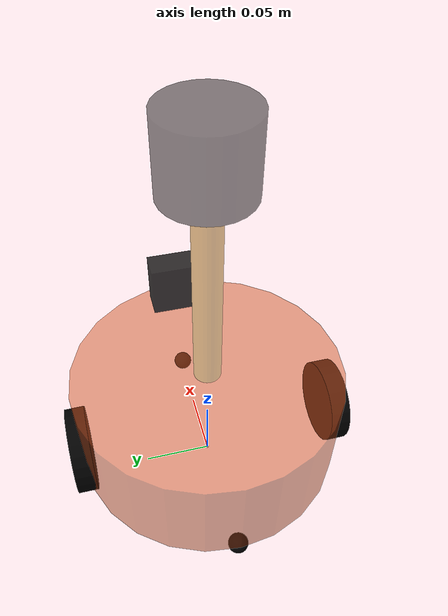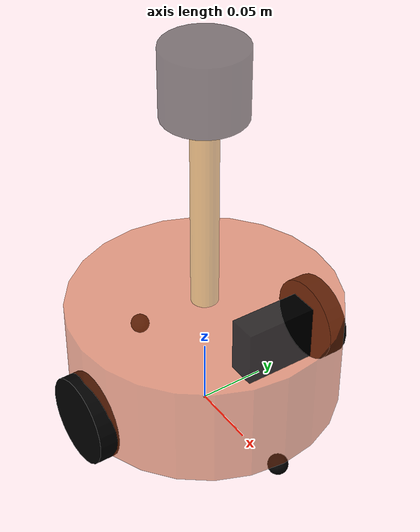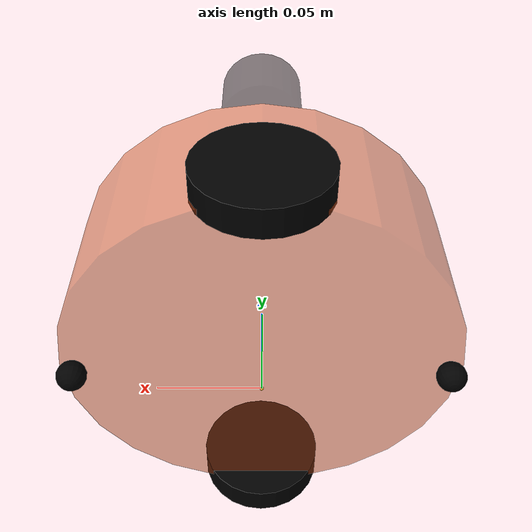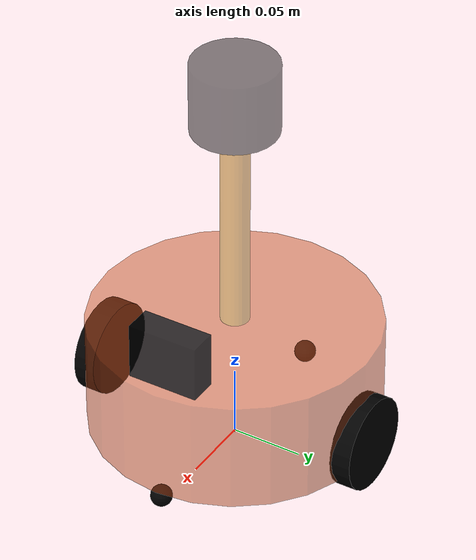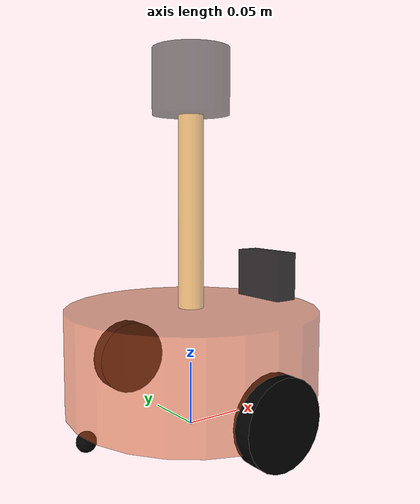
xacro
<robot name="mycar" xmlns:xacro="http://wiki.ros.org/xacro">
    <!-- 包含小车底盘、摄像头、雷达的xacro文件 -->
    <xacro:include filename="demo01_car_base.urdf.xacro" />
    <xacro:include filename="demo02_car_camera.urdf.xacro" />
    <xacro:include filename="demo03_car_laser.urdf.xacro" />
</robot>

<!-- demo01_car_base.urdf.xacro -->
<robot name="mycar" xmlns:xacro="http://wiki.ros.org/xacro">
    <xacro:property name="footprint_radius" value="0.001" />
    <!-- base_footprint -->
    <link name="base_footprint">
        <visual>
            <geometry>
                <sphere radius="${footprint_radius}" />
            </geometry>
        </visual>
    </link>
    <!-- 底盘base_link -->
    <xacro:property name="base_radius" value="0.1" />
    <xacro:property name="base_length" value="0.08" />
    <xacro:property name="ground_dis" value="0.015" />
    <xacro:property name="base_joint_z" value="${base_length/2 + ground_dis}" />

    <link name="base_link">
        <visual>
            <geometry>
                <cylinder radius="${base_radius}" length="${base_length}"/>
            </geometry>
            <origin xyz = "0 0 0" rpy="0 0 0"/>
            <material name="yellow">
                <color rgba="0.8 0.3 0.1 0.5"/>
            </material>
        </visual>
    </link>
    <joint name="base2footprint" type = "fixed">
        <parent link="base_footprint"/>
        <child link="base_link"/>
        <origin xyz="0 0 ${base_joint_z}" rpy="0 0 0"/>
    </joint>

    <!-- 驱动轮drive_wheel -->
    <xacro:property name="wheel_radius" value="0.0325"/>
    <xacro:property name="wheel_length" value="0.015"/>
    <xacro:property name="PI" value="3.1415927"/>
    <xacro:property name="wheel_joint_z" value="${(base_length/2 + ground_dis - wheel_radius) * -1}"/>

    <xacro:macro name="wheel_func" params="wheel_name flag">
        <link name="drive_wheel_${wheel_name}">
            <visual>
                <geometry>
                    <cylinder radius="${wheel_radius}" length="${wheel_length}" />
                </geometry>
                <origin xyz="0 0 0" rpy="${PI/2} 0 0"/>
                <material name="black">
                    <color rgba = "0 0 0 1"/>
                </material>
            </visual>
        </link>
        <joint name= "drive_wheel_${wheel_name}_to_base" type = "continuous">
            <parent link="base_link"/>
            <child link="drive_wheel_${wheel_name}"/>
            <origin xyz="0 ${0.1*flag} ${wheel_joint_z}" rpy="0 0 0"/>
            <axis xyz="0 1 0"/>
        </joint>
    </xacro:macro>

    <xacro:wheel_func wheel_name="left" flag="1" />
    <xacro:wheel_func wheel_name="right" flag="-1" />

    <!-- 万向轮添加 -->
    <xacro:property name="universal_wheel_radius" value="0.0075" />
    <xacro:property name="universal_wheel_joint_z" value="${(base_length/2 + ground_dis - universal_wheel_radius)*-1}" />
    <xacro:macro name="universal_wheel_func" params="universal_wheel_name flag">
        <link name="universal_wheel_${universal_wheel_name}">
            <visual>
                <geometry>
                    <sphere radius="${universal_wheel_radius}" />
                </geometry>
                <origin xyz="0 0 0" rpy="0 0 0"/>
                <material name="black">
                    <color rgba = "0 0 0 1"/>
                </material>
            </visual>
        </link>
        <joint name= "universal_wheel_${universal_wheel_name}_to_base" type = "continuous">
            <parent link="base_link"/>
            <child link="universal_wheel_${universal_wheel_name}"/>
            <origin xyz="${flag*(base_radius-universal_wheel_radius)} 0 ${universal_wheel_joint_z}" rpy="0 0 0"/>
            <axis xyz="1 1 1"/>
        </joint>
    </xacro:macro>

    <xacro:universal_wheel_func universal_wheel_name="front" flag="1"/>
    <xacro:universal_wheel_func universal_wheel_name="back" flag="-1"/>
</robot>

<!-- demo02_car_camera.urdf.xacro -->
<robot name="camera" xmlns:xacro="http://wiki.ros.org/xacro">
    <!-- 摄像头部件 -->
    <xacro:property name="camera_length" value="0.02"/>
    <xacro:property name="camera_width" value="0.05"/>
    <xacro:property name="camera_height" value="0.04"/>
    <xacro:property name="joint_camera_x" value="0.08"/>
    <xacro:property name="joint_camera_y" value="0"/>
    <xacro:property name="joint_camera_z" value="${base_length / 2 + camera_height / 2}"/>

    <link name="camera">
        <visual>
            <geometry>
                <box size="${camera_length} ${camera_width} ${camera_height}"/>
            </geometry>
            <material name="black">
                <color rgba="0 0 0 0.8"/>
            </material>
        </visual>
    </link>
    <joint name="camera2base" type="fixed">
        <parent link="base_link"/>
        <child link="camera"/>
        <origin xyz="${joint_camera_x} ${joint_camera_y} ${joint_camera_z}" rpy="0 0 0"/>
    </joint>
</robot>

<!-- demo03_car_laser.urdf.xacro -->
<robot name="laser" xmlns:xacro="http://wiki.ros.org/xacro">
    <!-- 雷达部件 -->

    <xacro:property name="support_length" value="0.15" />
    <xacro:property name="support_radius" value="0.01" />
    <xacro:property name="laser_length" value="0.05" />
    <xacro:property name="laser_radius" value="0.03" />
    <xacro:property name="joint_support_x" value="0" />
    <xacro:property name="joint_support_y" value="0" />
    <xacro:property name="joint_support_z" value="${base_length/2+support_length/2}" />
    <xacro:property name="joint_laser_x" value="0" />
    <xacro:property name="joint_laser_y" value="0" />
    <xacro:property name="joint_laser_z" value="${support_length/2+laser_length/2}" />
    <!-- 1.支架设计 -->
    <link name="support">
        <visual>
            <geometry>
                <cylinder radius="${support_radius}" length="${support_length}" />
            </geometry>
            <material name = "yellow">
                <color rgba="0.8 0.5 0.0 0.5" />
            </material>
        </visual>
    </link>
    <joint name="support2base" type="fixed">
        <parent link="base_link" />
        <child link = "support" />
        <origin xyz="${joint_support_x} ${joint_support_y} ${joint_support_z}" rpy="0 0 0"/>
    </joint>
    <!-- 2.雷达设计 -->
    <link name="laser">
        <visual>
            <geometry>
                <cylinder radius="${laser_radius}" length="${laser_length}" />
            </geometry>
            <material name = "black">
                <color rgba="0 0 0 0.5" />
            </material>
        </visual>
    </link>
    <joint name="laser2support" type="fixed">
        <parent link="support" />
        <child link = "laser" />
        <origin xyz="${joint_laser_x} ${joint_laser_y} ${joint_laser_z}" rpy="0 0 0"/>
    </joint>
</robot>
